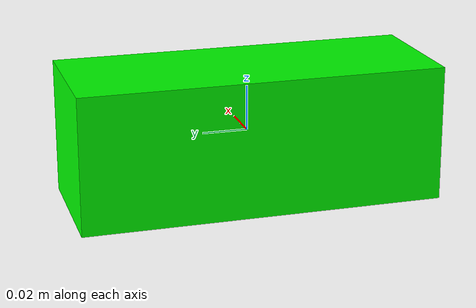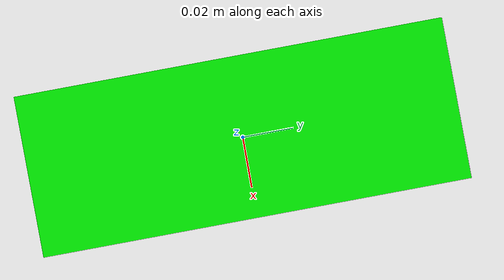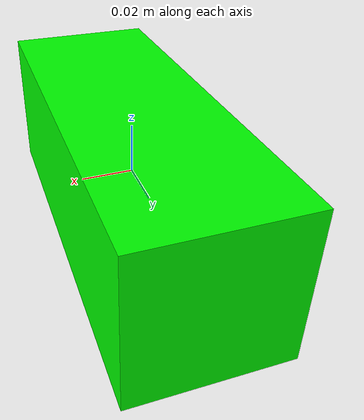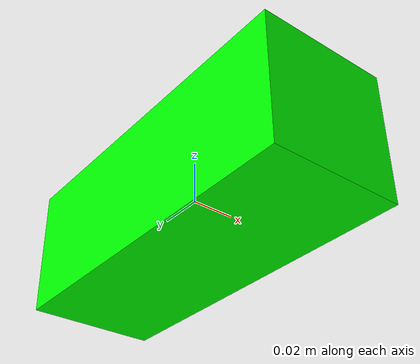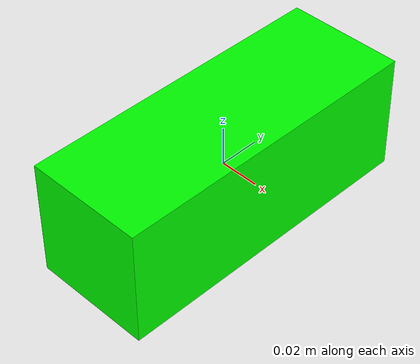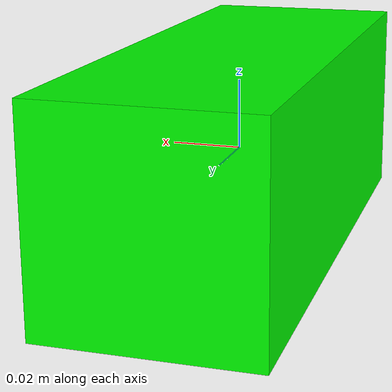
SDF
<?xml version="1.0"?>
<sdf version="1.7">
  <model name="block3">
    <pose> 0 0 0 0 0 0 </pose>
    <link name="block3_link">
      <inertial>
        <mass>0.2</mass>
        <inertia>
          <ixx>0.026508952160302166</ixx>
          <ixy>0.0</ixy>
          <ixz>0.0</ixz>
          <iyy>0.028155796674108682</iyy>
          <iyz>0.0</iyz>
          <izz>0.026508952160302166</izz>
        </inertia>
      </inertial>
      <collision name="collision">
        <geometry>
          <box>
            <size> 0.06 0.16 0.06 </size>
          </box>
        </geometry>
        <surface>
            <friction>
                <ode>
                    <mu>1.0</mu>
                    <mu2>1.0</mu2>
                </ode>
            </friction>
        </surface>
      </collision>
      <visual name="visual">
        <geometry>
          <box>
            <size> 0.06 0.16 0.06 </size>
          </box>
        </geometry>
        <material>
          <diffuse>0 1 0 1</diffuse>
        </material>
      </visual>
    </link>
  </model>
</sdf>
